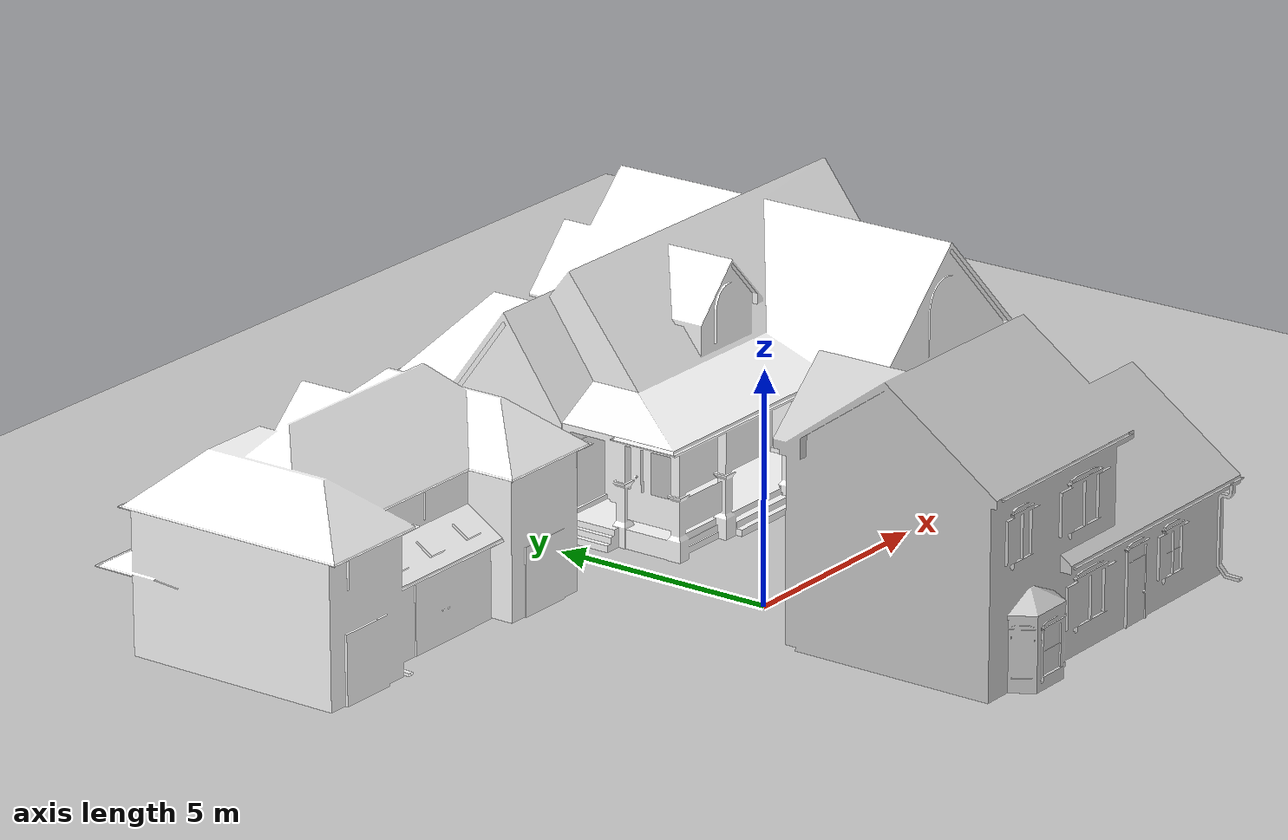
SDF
<?xml version="1.0" ?>
<!-- |    This document was autogenerated by xacro from buildings.world.xacro          | -->
<!-- |    EDITING THIS FILE BY HAND IS NOT RECOMMENDED                                 | -->
<sdf version="1.4" xmlns:xacro="http://www.ros.org/wiki/xacro">
  <world name="default" xmlns:xacro="http://www.ros.org/wiki/xacro">
    <include>
      <uri>model://ground_plane</uri>
    </include>
    <include>
      <uri>model://sun</uri>
    </include>
    <scene>
      <ambient>0.5 0.5 0.5 1</ambient>
      <background>0.5 0.5 0.5 1</background>
      <shadows>false</shadows>
    </scene>
    <physics type="ode">
      <gravity>0 0 -9.81</gravity>
      <ode>
        <solver>
          <type>quick</type>
          <iters>10</iters>
          <sor>1.3</sor>
        </solver>
        <constraints>
          <cfm>0.0</cfm>
          <erp>0.2</erp>
          <contact_max_correcting_vel>10</contact_max_correcting_vel>
          <contact_surface_layer>0.001</contact_surface_layer>
        </constraints>
      </ode>
      <max_step_size>0.001</max_step_size>
    </physics>
    <model name="House 1">
      <pose>+6 6 0 0 0 0</pose>
      <static>1</static>
      <link name="link">
        <collision name="collision">
          <geometry>
            <mesh>
              <uri>model://house_1/meshes/house_1.dae</uri>
            </mesh>
          </geometry>
          <max_contacts>10</max_contacts>
          <surface>
            <contact>
              <ode/>
            </contact>
            <bounce/>
            <friction>
              <ode/>
            </friction>
          </surface>
        </collision>
        <visual name="visual">
          <geometry>
            <mesh>
              <uri>model://house_1/meshes/house_1.dae</uri>
            </mesh>
          </geometry>
          <material>
            <script>
              <uri>model://house_1/materials/scripts</uri>
              <uri>model://house_1/materials/textures</uri>
              <name>House_1/Diffuse</name>
            </script>
            <shader type="normal_map_object_space">
              <normal_map>House_1_Normal.png</normal_map>
            </shader>
          </material>
        </visual>
        <self_collide>0</self_collide>
        <kinematic>0</kinematic>
        <gravity>1</gravity>
      </link>
      <pose>1 -1 0 0 -0 0</pose>
    </model>
    <model name="House 2">
      <pose>-6 6 0 0 0 0</pose>
      <static>1</static>
      <link name="link">
        <collision name="collision">
          <geometry>
            <mesh>
              <uri>model://house_2/meshes/house_2.dae</uri>
            </mesh>
          </geometry>
          <max_contacts>10</max_contacts>
          <surface>
            <contact>
              <ode/>
            </contact>
            <bounce/>
            <friction>
              <ode/>
            </friction>
          </surface>
        </collision>
        <visual name="visual">
          <geometry>
            <mesh>
              <uri>model://house_2/meshes/house_2.dae</uri>
            </mesh>
          </geometry>
          <material>
            <script>
              <uri>model://house_2/materials/scripts</uri>
              <uri>model://house_2/materials/textures</uri>
              <uri>model://house_1/materials/textures</uri>
              <name>House_2/Diffuse</name>
            </script>
            <shader type="normal_map_object_space">
              <normal_map>model://house_1/materials/textures/House_1_Normal.png</normal_map>
            </shader>
          </material>
        </visual>
        <self_collide>0</self_collide>
        <kinematic>0</kinematic>
        <gravity>1</gravity>
      </link>
      <pose>1 -1 0 0 -0 0</pose>
    </model>
    <model name="House 3">
      <pose>+3 -4 0 0 0 0</pose>
      <static>1</static>
      <link name="link">
        <collision name="collision">
          <geometry>
            <mesh>
              <uri>model://house_3/meshes/house_3.dae</uri>
            </mesh>
          </geometry>
          <max_contacts>10</max_contacts>
          <surface>
            <contact>
              <ode/>
            </contact>
            <bounce/>
            <friction>
              <ode/>
            </friction>
          </surface>
        </collision>
        <visual name="visual">
          <geometry>
            <mesh>
              <uri>model://house_3/meshes/house_3.dae</uri>
            </mesh>
          </geometry>
          <material>
            <script>
              <uri>model://house_3/materials/scripts</uri>
              <uri>model://house_3/materials/textures</uri>
              <uri>model://house_1/materials/textures</uri>
              <name>House_3/Diffuse</name>
            </script>
            <shader type="normal_map_object_space">
              <normal_map>model://house_1/materials/textures/House_1_Normal.png</normal_map>
            </shader>
          </material>
        </visual>
        <self_collide>0</self_collide>
        <kinematic>0</kinematic>
        <gravity>1</gravity>
      </link>
      <pose>1 -1 0 0 -0 0</pose>
    </model>
  </world>
</sdf>
